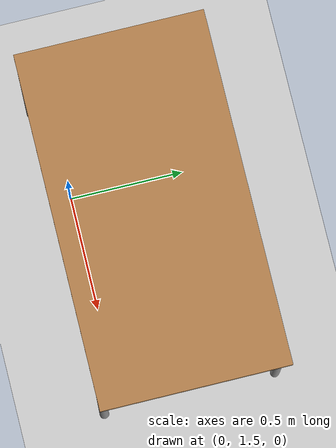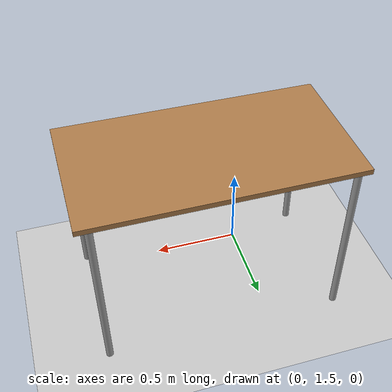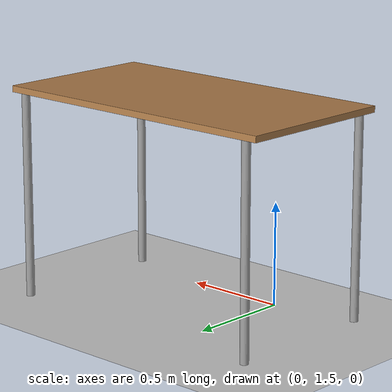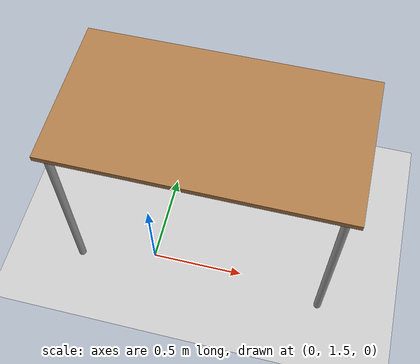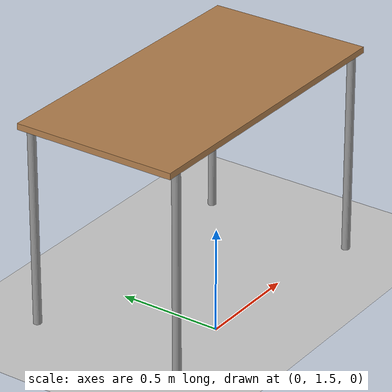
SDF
<?xml version='1.0'?>
<sdf version='1.9'>
  <world name='pick_and_place_cubes_base'>
    <physics name='1ms' type='ignored'>
      <max_step_size>0.001</max_step_size>
      <real_time_factor>1.0</real_time_factor>
      <real_time_update_rate>1000</real_time_update_rate>
    </physics>

    <plugin name='gz::sim::systems::Physics' filename='gz-sim-physics-system'/>
    <plugin name='gz::sim::systems::UserCommands' filename='gz-sim-user-commands-system'/>
    <plugin name='gz::sim::systems::Sensors' filename='gz-sim-sensors-system'>
      <render_engine>ogre2</render_engine>
    </plugin>
    <plugin name='gz::sim::systems::SceneBroadcaster' filename='gz-sim-scene-broadcaster-system'/>

    <scene>
      <ambient>0.4 0.4 0.4 1</ambient>
      <background>0.75 0.75 0.75 1</background>
      <shadows>true</shadows>
    </scene>

    <gravity>0 0 -9.8</gravity>

    <include>
      <uri>model://ground_plane</uri>
    </include>

    <include>
      <uri>model://sun</uri>
    </include>

    <include>
      <uri>model://table</uri>
      <pose>0.270759 1.801050 0 0 0 0</pose>
    </include>
  </world>
</sdf>

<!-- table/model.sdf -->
<sdf version="1.5">
  <model name="table">
    <static>true</static>
    <link name="link">
      <collision name="surface">
        <pose>0 0 1.0 0 0 0</pose>
        <geometry>
          <box>
            <size>1.5 0.8 0.03</size>
          </box>
        </geometry>
        <surface>
          <friction>
            <ode>
              <mu>0.6</mu>
              <mu2>0.6</mu2>
            </ode>
          </friction>
        </surface>
      </collision>
      <visual name="visual1">
        <pose>0 0 1.0 0 0 0</pose>
        <geometry>
          <box>
            <size>1.5 0.8 0.03</size>
          </box>
        </geometry>
        <material>
          <script>
            <uri>model://media/materials/scripts/gazebo.material</uri>
            <name>Gazebo/Wood</name>
          </script>
        </material>
      </visual>
      <collision name="front_left_leg">
        <pose>0.68 0.38 0.5 0 0 0</pose>
        <geometry>
          <cylinder>
            <radius>0.02</radius>
            <length>1.0</length>
          </cylinder>
        </geometry>
      </collision>
      <visual name="front_left_leg">
        <pose>0.68 0.38 0.5 0 0 0</pose>
        <geometry>
          <cylinder>
            <radius>0.02</radius>
            <length>1.0</length>
          </cylinder>
        </geometry>
        <material>
          <script>
            <uri>model://media/materials/scripts/gazebo.material</uri>
            <name>Gazebo/Grey</name>
          </script>
        </material>
      </visual>
      <collision name="front_right_leg">
        <pose>0.68 -0.38 0.5 0 0 0</pose>
        <geometry>
          <cylinder>
            <radius>0.02</radius>
            <length>1.0</length>
          </cylinder>
        </geometry>
      </collision>
      <visual name="front_right_leg">
        <pose>0.68 -0.38 0.5 0 0 0</pose>
        <geometry>
          <cylinder>
            <radius>0.02</radius>
            <length>1.0</length>
          </cylinder>
        </geometry>
        <material>
          <script>
            <uri>model://media/materials/scripts/gazebo.material</uri>
            <name>Gazebo/Grey</name>
          </script>
        </material>
      </visual>
      <collision name="back_right_leg">
        <pose>-0.68 -0.38 0.5 0 0 0</pose>
        <geometry>
          <cylinder>
            <radius>0.02</radius>
            <length>1.0</length>
          </cylinder>
        </geometry>
      </collision>
      <visual name="back_right_leg">
        <pose>-0.68 -0.38 0.5 0 0 0</pose>
        <geometry>
          <cylinder>
            <radius>0.02</radius>
            <length>1.0</length>
          </cylinder>
        </geometry>
        <material>
          <script>
            <uri>model://media/materials/scripts/gazebo.material</uri>
            <name>Gazebo/Grey</name>
          </script>
        </material>
      </visual>
      <collision name="back_left_leg">
        <pose>-0.68 0.38 0.5 0 0 0</pose>
        <geometry>
          <cylinder>
            <radius>0.02</radius>
            <length>1.0</length>
          </cylinder>
        </geometry>
      </collision>
      <visual name="back_left_leg">
        <pose>-0.68 0.38 0.5 0 0 0</pose>
        <geometry>
          <cylinder>
            <radius>0.02</radius>
            <length>1.0</length>
          </cylinder>
        </geometry>
        <material>
          <script>
            <uri>model://media/materials/scripts/gazebo.material</uri>
            <name>Gazebo/Grey</name>
          </script>
        </material>
      </visual>
    </link>
  </model>
</sdf>
